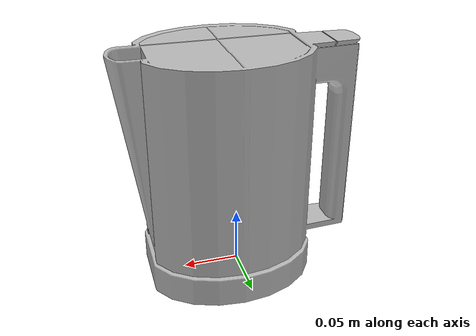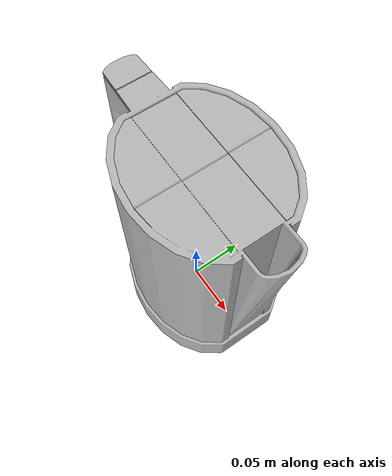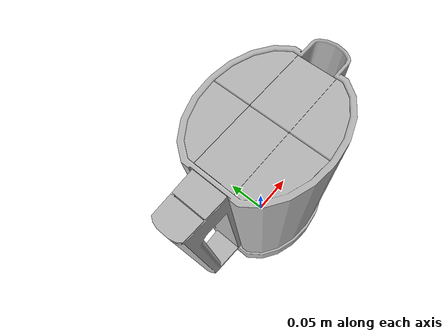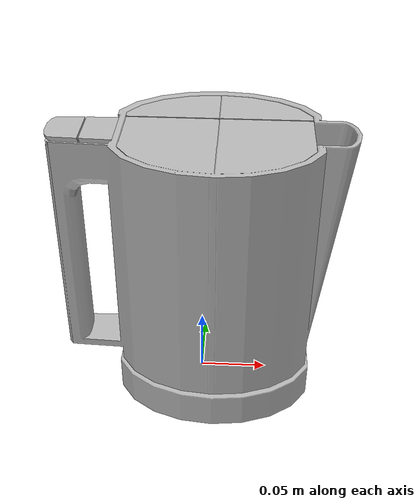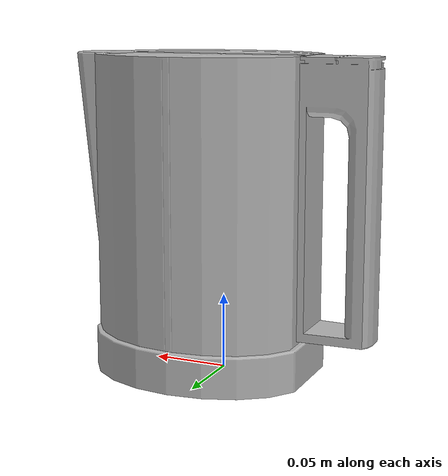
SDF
<?xml version='1.0'?>
<sdf version='1.4'>
  <model name='343'>
    <pose>0 0 0 0 0 0</pose>
    <static>true</static>
    <link name='link'>
      <collision name='collision'>
        <pose>0 0 0 0 0 0</pose>
        <geometry>
          <box>
            <size>0.209506 0.13 2</size>
          </box>
        </geometry>
      </collision>
      <visual name='visual'>
        <pose>0 0 0 0 0 0</pose>
        <geometry>
          <mesh><uri>model://343/343.dae</uri></mesh>
        </geometry>
      </visual>
    </link>
  </model>
</sdf>
